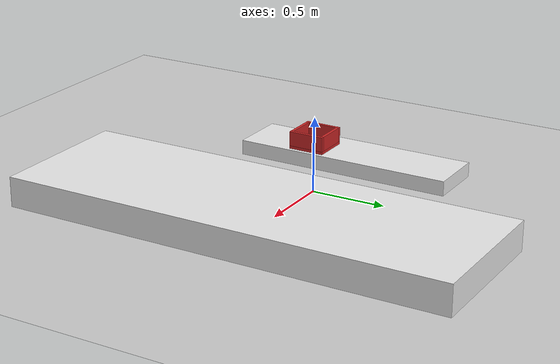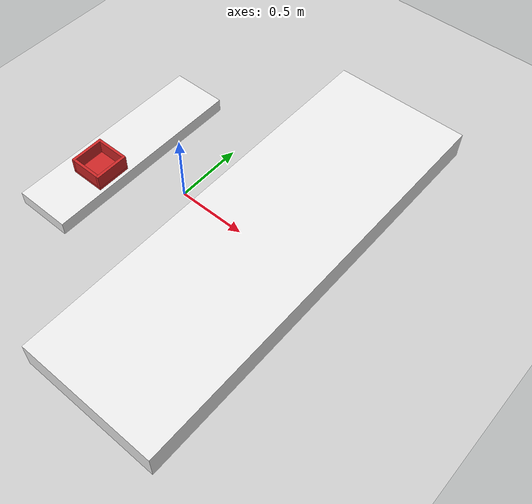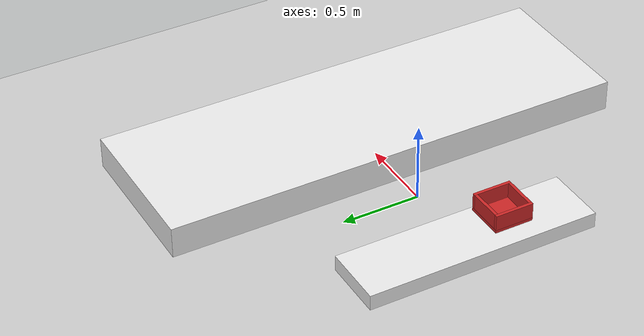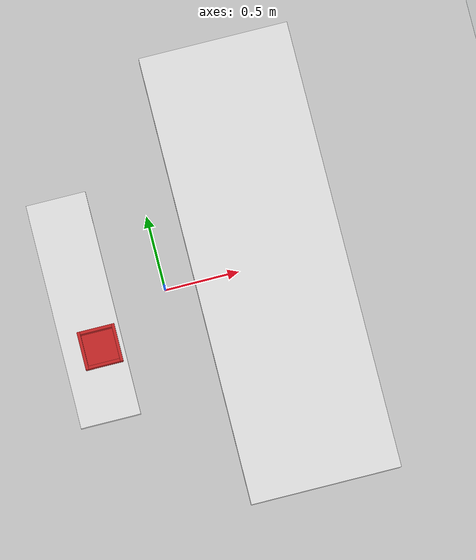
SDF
<sdf version="1.6">
 <world name="default">
  <include><uri>model://sun</uri></include>
  <include><uri>model://ground_plane</uri></include>
  <include>
   <uri>model://pick_and_place/models/workbench</uri>
   <pose>0.7 0 0.1 0 0 0</pose>
   <static>1</static>
  </include>
  <include>
   <uri>model://pick_and_place/models/underbin_bench</uri>
   <pose>-0.55 0 0.05 0 0 0</pose>
   <static>1</static>
  </include>
  <include>
   <uri>model://pick_and_place/models/bin_red</uri>
   <pose>-0.5 -0.27 0.11 0 0 0</pose>
   <static>1</static>
  </include>
  <include>
   <uri>model://pick_and_place/models/block_blue</uri>
   <pose>0.6 0.22 0.115 0 0 0</pose>
   <name>block_blue_1</name>
  </include>
  <include>
   <uri>model://pick_and_place/models/block_green</uri>
   <pose>0.45 0.0 0.115 0 0 0</pose>
   <name>block_green_1</name>
  </include>
  <joint name="cameras" type="fixed">
   <child>kinect::camera_link</child>
   <parent>bin_green::link_0</parent>
   <axis><xyz>2.0 2.0 2.0</xyz><limit><upper>0</upper><lower>0</lower></limit></axis>
  </joint>
 </world>
</sdf>

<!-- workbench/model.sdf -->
<sdf version='1.7'>
  <model name='workbench'>
    <link name='link_0'>
      <inertial>
        <mass>1</mass>
        <inertia>
          <ixx>0.166667</ixx>
          <ixy>0</ixy>
          <ixz>0</ixz>
          <iyy>0.166667</iyy>
          <iyz>0</iyz>
          <izz>0.166667</izz>
        </inertia>
        <pose>0 0 0 0 -0 0</pose>
      </inertial>
      <pose>-0 0 0 0 -0 0</pose>
      <gravity>1</gravity>
      <self_collide>0</self_collide>
      <kinematic>0</kinematic>
      <enable_wind>0</enable_wind>
      <visual name='visual'>
        <pose>0 0 0 0 -0 0</pose>
        <geometry>
          <box>
            <size>1.0 3 0.2</size>
          </box>
        </geometry>
        <material>
          <lighting>1</lighting>
          <script>
            <uri>file://media/materials/scripts/gazebo.material</uri>
            <name>Gazebo/White</name>
          </script>
          <shader type='pixel'>
            <normal_map>__default__</normal_map>
          </shader>
          <ambient>0 0 0 1</ambient>
          <diffuse>0 0 0 1</diffuse>
          <specular>0.01 0.01 0.01 1</specular>
          <emissive>0 0 0 1</emissive>
        </material>
        <transparency>0</transparency>
        <cast_shadows>1</cast_shadows>
      </visual>
      <collision name='collision'>
        <laser_retro>0</laser_retro>
        <max_contacts>10</max_contacts>
        <pose>0 0 0 0 -0 0</pose>
        <geometry>
          <box>
            <size>1.0 3 0.2</size>
          </box>
        </geometry>
        <surface>
          <friction>
            <ode>
              <mu>1</mu>
              <mu2>1</mu2>
              <fdir1>0 0 0</fdir1>
              <slip1>0</slip1>
              <slip2>0</slip2>
            </ode>
            <torsional>
              <coefficient>1</coefficient>
              <patch_radius>0</patch_radius>
              <surface_radius>0</surface_radius>
              <use_patch_radius>1</use_patch_radius>
              <ode>
                <slip>0</slip>
              </ode>
            </torsional>
          </friction>
          <bounce>
            <restitution_coefficient>0</restitution_coefficient>
            <threshold>1e+06</threshold>
          </bounce>
          <contact>
            <collide_without_contact>0</collide_without_contact>
            <collide_without_contact_bitmask>1</collide_without_contact_bitmask>
            <collide_bitmask>1</collide_bitmask>
            <ode>
              <soft_cfm>0</soft_cfm>
              <soft_erp>0.2</soft_erp>
              <kp>1e+13</kp>
              <kd>1</kd>
              <max_vel>0.01</max_vel>
              <min_depth>0</min_depth>
            </ode>
            <bullet>
              <split_impulse>1</split_impulse>
              <split_impulse_penetration_threshold>-0.01</split_impulse_penetration_threshold>
              <soft_cfm>0</soft_cfm>
              <soft_erp>0.2</soft_erp>
              <kp>1e+13</kp>
              <kd>1</kd>
            </bullet>
          </contact>
        </surface>
      </collision>
    </link>
    <static>0</static>
    <allow_auto_disable>1</allow_auto_disable>
  </model>
</sdf>

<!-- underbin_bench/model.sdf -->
<sdf version='1.7'>
  <model name='underbin_bench'>
    <link name='link_0'>
      <inertial>
        <mass>1</mass>
        <inertia>
          <ixx>0.166667</ixx>
          <ixy>0</ixy>
          <ixz>0</ixz>
          <iyy>0.166667</iyy>
          <iyz>0</iyz>
          <izz>0.166667</izz>
        </inertia>
        <pose>0 0 0 0 -0 0</pose>
      </inertial>
      <pose>0 -0 -0 0 -0 0</pose>
      <gravity>1</gravity>
      <self_collide>0</self_collide>
      <kinematic>0</kinematic>
      <enable_wind>0</enable_wind>
      <visual name='visual'>
        <pose>0 0 0 0 -0 0</pose>
        <geometry>
          <box>
            <size>0.4 1.5 0.1</size>
          </box>
        </geometry>
        <material>
          <lighting>1</lighting>
          <script>
            <uri>file://media/materials/scripts/gazebo.material</uri>
            <name>Gazebo/White</name>
          </script>
          <shader type='pixel'>
            <normal_map>__default__</normal_map>
          </shader>
          <ambient>0.3 0.3 0.3 1</ambient>
          <diffuse>0.7 0.7 0.7 1</diffuse>
          <specular>0.01 0.01 0.01 1</specular>
          <emissive>0 0 0 1</emissive>
        </material>
        <transparency>0</transparency>
        <cast_shadows>1</cast_shadows>
      </visual>
      <collision name='collision'>
        <laser_retro>0</laser_retro>
        <max_contacts>10</max_contacts>
        <pose>0 0 0 0 -0 0</pose>
        <geometry>
          <box>
            <size>0.4 1.5 0.1</size>
          </box>
        </geometry>
        <surface>
          <friction>
            <ode>
              <mu>1</mu>
              <mu2>1</mu2>
              <fdir1>0 0 0</fdir1>
              <slip1>0</slip1>
              <slip2>0</slip2>
            </ode>
            <torsional>
              <coefficient>1</coefficient>
              <patch_radius>0</patch_radius>
              <surface_radius>0</surface_radius>
              <use_patch_radius>1</use_patch_radius>
              <ode>
                <slip>0</slip>
              </ode>
            </torsional>
          </friction>
          <bounce>
            <restitution_coefficient>0</restitution_coefficient>
            <threshold>1e+06</threshold>
          </bounce>
          <contact>
            <collide_without_contact>0</collide_without_contact>
            <collide_without_contact_bitmask>1</collide_without_contact_bitmask>
            <collide_bitmask>1</collide_bitmask>
            <ode>
              <soft_cfm>0</soft_cfm>
              <soft_erp>0.2</soft_erp>
              <kp>1e+13</kp>
              <kd>1</kd>
              <max_vel>0.01</max_vel>
              <min_depth>0</min_depth>
            </ode>
            <bullet>
              <split_impulse>1</split_impulse>
              <split_impulse_penetration_threshold>-0.01</split_impulse_penetration_threshold>
              <soft_cfm>0</soft_cfm>
              <soft_erp>0.2</soft_erp>
              <kp>1e+13</kp>
              <kd>1</kd>
            </bullet>
          </contact>
        </surface>
      </collision>
    </link>
    <static>0</static>
    <allow_auto_disable>1</allow_auto_disable>
  </model>
</sdf>

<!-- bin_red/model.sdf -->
<sdf version='1.7'>

  <model name='bin_red'>

    <link name='link_0'>
      <inertial>
        <mass>1</mass>
        <inertia>
          <ixx>0.166667</ixx>
          <ixy>0</ixy>
          <ixz>0</ixz>
          <iyy>0.166667</iyy>
          <iyz>0</iyz>
          <izz>0.166667</izz>
        </inertia>
        <pose>0 0 0 0 -0 0</pose>
      </inertial>
      <pose>0 0 0 0 -0 0</pose>
      <gravity>1</gravity>
      <self_collide>0</self_collide>
      <kinematic>0</kinematic>
      <enable_wind>0</enable_wind>
      <visual name='visual'>
        <pose>0 0 0 0 -0 0</pose>
        <geometry>
          <box>
            <size>0.25 0.25 0.02</size>
          </box>
        </geometry>
        <material>
          <lighting>1</lighting>
          <script>
            <uri>file://media/materials/scripts/gazebo.material</uri>
            <name>Gazebo/Red</name>
          </script>
          <shader type='pixel'>
            <normal_map>__default__</normal_map>
          </shader>
        </material>
        <transparency>0</transparency>
        <cast_shadows>1</cast_shadows>
      </visual>
      <collision name='collision'>
        <laser_retro>0</laser_retro>
        <max_contacts>10</max_contacts>
        <pose>0 0 0 0 -0 0</pose>
        <geometry>
          <box>
            <size>0.25 0.25 0.02</size>
          </box>
        </geometry>
        <surface>
          <friction>
            <ode>
              <mu>1</mu>
              <mu2>1</mu2>
              <fdir1>0 0 0</fdir1>
              <slip1>0</slip1>
              <slip2>0</slip2>
            </ode>
            <torsional>
              <coefficient>1</coefficient>
              <patch_radius>0</patch_radius>
              <surface_radius>0</surface_radius>
              <use_patch_radius>1</use_patch_radius>
              <ode>
                <slip>0</slip>
              </ode>
            </torsional>
          </friction>
          <bounce>
            <restitution_coefficient>0</restitution_coefficient>
            <threshold>1e+06</threshold>
          </bounce>
          <contact>
            <collide_without_contact>0</collide_without_contact>
            <collide_without_contact_bitmask>1</collide_without_contact_bitmask>
            <collide_bitmask>1</collide_bitmask>
            <ode>
              <soft_cfm>0</soft_cfm>
              <soft_erp>0.2</soft_erp>
              <kp>1e+13</kp>
              <kd>1</kd>
              <max_vel>0.01</max_vel>
              <min_depth>0</min_depth>
            </ode>
            <bullet>
              <split_impulse>1</split_impulse>
              <split_impulse_penetration_threshold>-0.01</split_impulse_penetration_threshold>
              <soft_cfm>0</soft_cfm>
              <soft_erp>0.2</soft_erp>
              <kp>1e+13</kp>
              <kd>1</kd>
            </bullet>
          </contact>
        </surface>
      </collision>
    </link>
    <link name='link_1'>
      <inertial>
        <mass>1</mass>
        <inertia>
          <ixx>0.166667</ixx>
          <ixy>0</ixy>
          <ixz>0</ixz>
          <iyy>0.166667</iyy>
          <iyz>0</iyz>
          <izz>0.166667</izz>
        </inertia>
        <pose>0 0 0 0 -0 0</pose>
      </inertial>
      <pose>-0.115 0 0.06 0 -0 0</pose>
      <gravity>1</gravity>
      <self_collide>0</self_collide>
      <kinematic>0</kinematic>
      <enable_wind>0</enable_wind>
      <visual name='visual'>
        <pose>0 0 0 0 -0 0</pose>
        <geometry>
          <box>
            <size>0.02 0.25 0.1</size>
          </box>
        </geometry>
        <material>
          <lighting>1</lighting>
          <script>
            <uri>file://media/materials/scripts/gazebo.material</uri>
            <name>Gazebo/Red</name>
          </script>
          <shader type='pixel'>
            <normal_map>__default__</normal_map>
          </shader>
        </material>
        <transparency>0</transparency>
        <cast_shadows>1</cast_shadows>
      </visual>
      <collision name='collision'>
        <laser_retro>0</laser_retro>
        <max_contacts>10</max_contacts>
        <pose>0 0 0 0 -0 0</pose>
        <geometry>
          <box>
            <size>0.02 0.25 0.1</size>
          </box>
        </geometry>
        <surface>
          <friction>
            <ode>
              <mu>1</mu>
              <mu2>1</mu2>
              <fdir1>0 0 0</fdir1>
              <slip1>0</slip1>
              <slip2>0</slip2>
            </ode>
            <torsional>
              <coefficient>1</coefficient>
              <patch_radius>0</patch_radius>
              <surface_radius>0</surface_radius>
              <use_patch_radius>1</use_patch_radius>
              <ode>
                <slip>0</slip>
              </ode>
            </torsional>
          </friction>
          <bounce>
            <restitution_coefficient>0</restitution_coefficient>
            <threshold>1e+06</threshold>
          </bounce>
          <contact>
            <collide_without_contact>0</collide_without_contact>
            <collide_without_contact_bitmask>1</collide_without_contact_bitmask>
            <collide_bitmask>1</collide_bitmask>
            <ode>
              <soft_cfm>0</soft_cfm>
              <soft_erp>0.2</soft_erp>
              <kp>1e+13</kp>
              <kd>1</kd>
              <max_vel>0.01</max_vel>
              <min_depth>0</min_depth>
            </ode>
            <bullet>
              <split_impulse>1</split_impulse>
              <split_impulse_penetration_threshold>-0.01</split_impulse_penetration_threshold>
              <soft_cfm>0</soft_cfm>
              <soft_erp>0.2</soft_erp>
              <kp>1e+13</kp>
              <kd>1</kd>
            </bullet>
          </contact>
        </surface>
      </collision>
    </link>
    <link name='link_1_clone'>
      <inertial>
        <mass>1</mass>
        <inertia>
          <ixx>0.166667</ixx>
          <ixy>0</ixy>
          <ixz>0</ixz>
          <iyy>0.166667</iyy>
          <iyz>0</iyz>
          <izz>0.166667</izz>
        </inertia>
        <pose>0 0 0 0 -0 0</pose>
      </inertial>
      <pose>0.115 0 0.06 0 -0 0</pose>
      <gravity>1</gravity>
      <self_collide>0</self_collide>
      <kinematic>0</kinematic>
      <enable_wind>0</enable_wind>
      <visual name='visual'>
        <pose>0 0 0 0 -0 0</pose>
        <geometry>
          <box>
            <size>0.02 0.25 0.1</size>
          </box>
        </geometry>
        <material>
          <lighting>1</lighting>
          <script>
            <uri>file://media/materials/scripts/gazebo.material</uri>
            <name>Gazebo/Red</name>
          </script>
          <shader type='pixel'>
            <normal_map>__default__</normal_map>
          </shader>
        </material>
        <transparency>0</transparency>
        <cast_shadows>1</cast_shadows>
      </visual>
      <collision name='collision'>
        <laser_retro>0</laser_retro>
        <max_contacts>10</max_contacts>
        <pose>0 0 0 0 -0 0</pose>
        <geometry>
          <box>
            <size>0.02 0.25 0.1</size>
          </box>
        </geometry>
        <surface>
          <friction>
            <ode>
              <mu>1</mu>
              <mu2>1</mu2>
              <fdir1>0 0 0</fdir1>
              <slip1>0</slip1>
              <slip2>0</slip2>
            </ode>
            <torsional>
              <coefficient>1</coefficient>
              <patch_radius>0</patch_radius>
              <surface_radius>0</surface_radius>
              <use_patch_radius>1</use_patch_radius>
              <ode>
                <slip>0</slip>
              </ode>
            </torsional>
          </friction>
          <bounce>
            <restitution_coefficient>0</restitution_coefficient>
            <threshold>1e+06</threshold>
          </bounce>
          <contact>
            <collide_without_contact>0</collide_without_contact>
            <collide_without_contact_bitmask>1</collide_without_contact_bitmask>
            <collide_bitmask>1</collide_bitmask>
            <ode>
              <soft_cfm>0</soft_cfm>
              <soft_erp>0.2</soft_erp>
              <kp>1e+13</kp>
              <kd>1</kd>
              <max_vel>0.01</max_vel>
              <min_depth>0</min_depth>
            </ode>
            <bullet>
              <split_impulse>1</split_impulse>
              <split_impulse_penetration_threshold>-0.01</split_impulse_penetration_threshold>
              <soft_cfm>0</soft_cfm>
              <soft_erp>0.2</soft_erp>
              <kp>1e+13</kp>
              <kd>1</kd>
            </bullet>
          </contact>
        </surface>
      </collision>
    </link>
    <link name='link_2'>
      <inertial>
        <mass>1</mass>
        <inertia>
          <ixx>0.166667</ixx>
          <ixy>0</ixy>
          <ixz>0</ixz>
          <iyy>0.166667</iyy>
          <iyz>0</iyz>
          <izz>0.166667</izz>
        </inertia>
        <pose>0 0 0 0 -0 0</pose>
      </inertial>
      <pose>0 -0.115 0.06 0 -0 0</pose>
      <gravity>1</gravity>
      <self_collide>0</self_collide>
      <kinematic>0</kinematic>
      <enable_wind>0</enable_wind>
      <visual name='visual'>
        <pose>0 0 0 0 -0 0</pose>
        <geometry>
          <box>
            <size>0.21 0.02 0.1</size>
          </box>
        </geometry>
        <material>
          <lighting>1</lighting>
          <script>
            <uri>file://media/materials/scripts/gazebo.material</uri>
            <name>Gazebo/Red</name>
          </script>
          <shader type='pixel'>
            <normal_map>__default__</normal_map>
          </shader>
        </material>
        <transparency>0</transparency>
        <cast_shadows>1</cast_shadows>
      </visual>
      <collision name='collision'>
        <laser_retro>0</laser_retro>
        <max_contacts>10</max_contacts>
        <pose>0 0 0 0 -0 0</pose>
        <geometry>
          <box>
            <size>0.21 0.02 0.1</size>
          </box>
        </geometry>
        <surface>
          <friction>
            <ode>
              <mu>1</mu>
              <mu2>1</mu2>
              <fdir1>0 0 0</fdir1>
              <slip1>0</slip1>
              <slip2>0</slip2>
            </ode>
            <torsional>
              <coefficient>1</coefficient>
              <patch_radius>0</patch_radius>
              <surface_radius>0</surface_radius>
              <use_patch_radius>1</use_patch_radius>
              <ode>
                <slip>0</slip>
              </ode>
            </torsional>
          </friction>
          <bounce>
            <restitution_coefficient>0</restitution_coefficient>
            <threshold>1e+06</threshold>
          </bounce>
          <contact>
            <collide_without_contact>0</collide_without_contact>
            <collide_without_contact_bitmask>1</collide_without_contact_bitmask>
            <collide_bitmask>1</collide_bitmask>
            <ode>
              <soft_cfm>0</soft_cfm>
              <soft_erp>0.2</soft_erp>
              <kp>1e+13</kp>
              <kd>1</kd>
              <max_vel>0.01</max_vel>
              <min_depth>0</min_depth>
            </ode>
            <bullet>
              <split_impulse>1</split_impulse>
              <split_impulse_penetration_threshold>-0.01</split_impulse_penetration_threshold>
              <soft_cfm>0</soft_cfm>
              <soft_erp>0.2</soft_erp>
              <kp>1e+13</kp>
              <kd>1</kd>
            </bullet>
          </contact>
        </surface>
      </collision>
    </link>
    <link name='link_2_clone'>
      <inertial>
        <mass>1</mass>
        <inertia>
          <ixx>0.166667</ixx>
          <ixy>0</ixy>
          <ixz>0</ixz>
          <iyy>0.166667</iyy>
          <iyz>0</iyz>
          <izz>0.166667</izz>
        </inertia>
        <pose>0 0 0 0 -0 0</pose>
      </inertial>
      <pose>0 0.115 0.06 0 -0 0</pose>
      <gravity>1</gravity>
      <self_collide>0</self_collide>
      <kinematic>0</kinematic>
      <enable_wind>0</enable_wind>
      <visual name='visual'>
        <pose>0 0 0 0 -0 0</pose>
        <geometry>
          <box>
            <size>0.21 0.02 0.1</size>
          </box>
        </geometry>
        <material>
          <lighting>1</lighting>
          <script>
            <uri>file://media/materials/scripts/gazebo.material</uri>
            <name>Gazebo/Red</name>
          </script>
          <shader type='pixel'>
            <normal_map>__default__</normal_map>
          </shader>
        </material>
        <transparency>0</transparency>
        <cast_shadows>1</cast_shadows>
      </visual>
      <collision name='collision'>
        <laser_retro>0</laser_retro>
        <max_contacts>10</max_contacts>
        <pose>0 0 0 0 -0 0</pose>
        <geometry>
          <box>
            <size>0.21 0.02 0.1</size>
          </box>
        </geometry>
        <surface>
          <friction>
            <ode>
              <mu>1</mu>
              <mu2>1</mu2>
              <fdir1>0 0 0</fdir1>
              <slip1>0</slip1>
              <slip2>0</slip2>
            </ode>
            <torsional>
              <coefficient>1</coefficient>
              <patch_radius>0</patch_radius>
              <surface_radius>0</surface_radius>
              <use_patch_radius>1</use_patch_radius>
              <ode>
                <slip>0</slip>
              </ode>
            </torsional>
          </friction>
          <bounce>
            <restitution_coefficient>0</restitution_coefficient>
            <threshold>1e+06</threshold>
          </bounce>
          <contact>
            <collide_without_contact>0</collide_without_contact>
            <collide_without_contact_bitmask>1</collide_without_contact_bitmask>
            <collide_bitmask>1</collide_bitmask>
            <ode>
              <soft_cfm>0</soft_cfm>
              <soft_erp>0.2</soft_erp>
              <kp>1e+13</kp>
              <kd>1</kd>
              <max_vel>0.01</max_vel>
              <min_depth>0</min_depth>
            </ode>
            <bullet>
              <split_impulse>1</split_impulse>
              <split_impulse_penetration_threshold>-0.01</split_impulse_penetration_threshold>
              <soft_cfm>0</soft_cfm>
              <soft_erp>0.2</soft_erp>
              <kp>1e+13</kp>
              <kd>1</kd>
            </bullet>
          </contact>
        </surface>
      </collision>
    </link>
    <static>0</static>
    <allow_auto_disable>1</allow_auto_disable>

  </model>

</sdf>

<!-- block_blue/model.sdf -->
<sdf version='1.6'>
  <model name='block_blue'>
    <link name='link' parent='bin_red'>

      <inertial>
        <!--NOTE: Uses limestone density (i.e 2000 kg/m^3) to calculate the mass
        see https://en.wikipedia.org/wiki/Limestone
        -->
        <mass>0.1024</mass>
        <inertia>
          <ixx>4.369e-5</ixx>
          <ixy>0</ixy>
          <ixz>0</ixz>
          <iyy>4.028e-5</iyy>
          <iyz>0</iyz>
          <izz>1.407e-5</izz>
        </inertia>

      </inertial>
        <self_collide>0</self_collide>
      <kinematic>0</kinematic>
      <enable_wind>0</enable_wind>
      <pose>0 0 0 0 -0 0</pose>
      <visual name='visual'>
        <geometry>
          <box>
            <size>0.03 0.03 0.03</size>
          </box>
        </geometry>
        <material>
          <script>
            <uri>file://media/materials/scripts/gazebo.material</uri>
            <name>Gazebo/Blue</name>
          </script>
          <shader type='pixel'/>
        </material>

        <transparency>0</transparency>
        <cast_shadows>1</cast_shadows>
      </visual>
      <collision name='collision'>
        <laser_retro>0</laser_retro>
        <max_contacts>10</max_contacts>

        <geometry>
          <box>
            <size>0.03 0.03 0.03</size>
          </box>
        </geometry>
        <surface>
          <!--NOTE: Uses dynamic friction of brick on a wood surface
          see https://www.engineeringtoolbox.com/friction-coefficients-d_778.html
          -->
          <friction>
            <ode>
              <mu>1.0</mu>
              <mu2>1.0</mu2>
              <fdir1>0 0 0</fdir1>
              <slip1>0</slip1>
              <slip2>0</slip2>
            </ode>
            <torsional>
              <coefficient>1</coefficient>
              <patch_radius>0</patch_radius>
              <surface_radius>0</surface_radius>
              <use_patch_radius>1</use_patch_radius>
              <ode>
                <slip>0</slip>
              </ode>
            </torsional>
          </friction>
          <bounce>
            <restitution_coefficient>0</restitution_coefficient>
            <threshold>1e+06</threshold>
          </bounce>
          <contact>
            <collide_without_contact>0</collide_without_contact>
            <collide_without_contact_bitmask>1</collide_without_contact_bitmask>
            <collide_bitmask>1</collide_bitmask>
            <ode>
              <soft_cfm>0</soft_cfm>
              <soft_erp>0.2</soft_erp>
              <kp>1e+13</kp>
              <kd>5</kd>
              <max_vel>0</max_vel>
              <min_depth>0.003</min_depth>
            </ode>
            <bullet>
              <split_impulse>1</split_impulse>
              <split_impulse_penetration_threshold>-0.01</split_impulse_penetration_threshold>
              <soft_cfm>0</soft_cfm>
              <soft_erp>0.2</soft_erp>
              <kp>1e+13</kp>
              <kd>1</kd>
            </bullet>
          </contact>
        </surface>
      </collision>
    </link>
    <static>0</static>
    <allow_auto_disable>1</allow_auto_disable>
  </model>
</sdf>

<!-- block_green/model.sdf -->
<sdf version='1.6'>
  <model name='block_green'>
    <link name='link'>

      <inertial>
        <!--NOTE: Uses limestone density (i.e 2000 kg/m^3) to calculate the mass
        see https://en.wikipedia.org/wiki/Limestone
        -->
        <mass>0.1024</mass>
        <inertia>
          <ixx>4.369e-5</ixx>
          <ixy>0</ixy>
          <ixz>0</ixz>
          <iyy>4.028e-5</iyy>
          <iyz>0</iyz>
          <izz>1.407e-5</izz>
        </inertia>

      </inertial>
        <self_collide>0</self_collide>
      <kinematic>0</kinematic>
      <enable_wind>0</enable_wind>

      <visual name='visual'>
        <geometry>
          <box>
            <size>0.03 0.03 0.03</size>
          </box>
        </geometry>
        <material>
          <script>
            <uri>file://media/materials/scripts/gazebo.material</uri>
            <name>Gazebo/Green</name>
          </script>
          <shader type='pixel'/>
        </material>

        <transparency>0</transparency>
        <cast_shadows>1</cast_shadows>
      </visual>
      <collision name='collision'>
        <laser_retro>0</laser_retro>
        <max_contacts>10</max_contacts>

        <geometry>
          <box>
            <size>0.03 0.03 0.03</size>
          </box>
        </geometry>
        <surface>
          <!--NOTE: Uses dynamic friction of brick on a wood surface
          see https://www.engineeringtoolbox.com/friction-coefficients-d_778.html
          -->
          <friction>
            <ode>
              <mu>1.0</mu>
              <mu2>1.0</mu2>
              <fdir1>0 0 0</fdir1>
              <slip1>0</slip1>
              <slip2>0</slip2>
            </ode>
            <torsional>
              <coefficient>1</coefficient>
              <patch_radius>0</patch_radius>
              <surface_radius>0</surface_radius>
              <use_patch_radius>1</use_patch_radius>
              <ode>
                <slip>0</slip>
              </ode>
            </torsional>
          </friction>
          <bounce>
            <restitution_coefficient>0</restitution_coefficient>
            <threshold>1e+06</threshold>
          </bounce>
          <contact>
            <collide_without_contact>0</collide_without_contact>
            <collide_without_contact_bitmask>1</collide_without_contact_bitmask>
            <collide_bitmask>1</collide_bitmask>
            <ode>
              <soft_cfm>0</soft_cfm>
              <soft_erp>0.2</soft_erp>
              <kp>1e+13</kp>
              <kd>5</kd>
              <max_vel>0</max_vel>
              <min_depth>0.003</min_depth>
            </ode>
            <bullet>
              <split_impulse>1</split_impulse>
              <split_impulse_penetration_threshold>-0.01</split_impulse_penetration_threshold>
              <soft_cfm>0</soft_cfm>
              <soft_erp>0.2</soft_erp>
              <kp>1e+13</kp>
              <kd>1</kd>
            </bullet>
          </contact>
        </surface>
      </collision>
    </link>
    <static>0</static>
    <allow_auto_disable>1</allow_auto_disable>
  </model>

</sdf>
